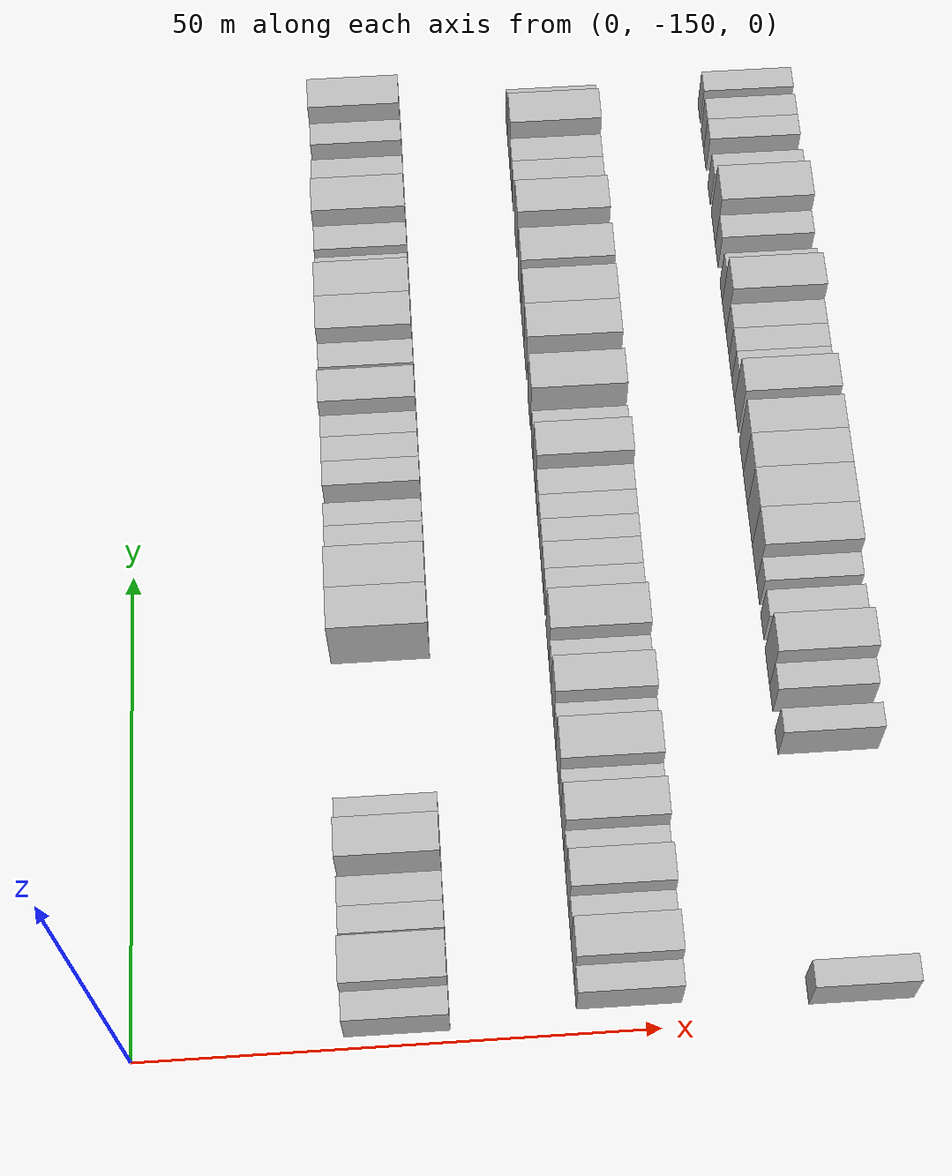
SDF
<sdf version="1.6">
 <world name="default">
  <model name="building_22">
   <static>1</static>
   <pose>25.0000 -147.4935 0 0.000000 0.000000 0.000000</pose>
   <link name="link">
    <pose>0 0 3.00 0 0 0</pose>
    <collision name="collision"><geometry><box><size>10.0000 2.7465 6.0000</size></box></geometry></collision>
    <visual name="visual">
     <cast_shadows>0</cast_shadows>
     <geometry><box><size>10.0000 2.7465 6.0000</size></box></geometry>
     <material>
      <script>
       <uri>model://HANNAS_wall/materials/scripts</uri>
       <uri>model://HANNAS_wall/materials/textures</uri>
       <name>vrc/HANNAS_wall</name>
      </script>
     </material>
    </visual>
   </link>
  </model>
  <model name="building_23">
   <static>1</static>
   <pose>25.0000 -143.8835 0 0.000000 0.000000 0.000000</pose>
   <link name="link">
    <pose>0 0 4.50 0 0 0</pose>
    <collision name="collision"><geometry><box><size>10.0000 4.4735 9.0000</size></box></geometry></collision>
    <visual name="visual">
     <cast_shadows>0</cast_shadows>
     <geometry><box><size>10.0000 4.4735 9.0000</size></box></geometry>
     <material>
      <script>
       <uri>model://HANNAS_wall/materials/scripts</uri>
       <uri>model://HANNAS_wall/materials/textures</uri>
       <name>vrc/HANNAS_wall</name>
      </script>
     </material>
    </visual>
   </link>
  </model>
  <model name="building_24">
   <static>1</static>
   <pose>25.0000 -139.3091 0 0.000000 0.000000 0.000000</pose>
   <link name="link">
    <pose>0 0 3.00 0 0 0</pose>
    <collision name="collision"><geometry><box><size>10.0000 2.6754 6.0000</size></box></geometry></collision>
    <visual name="visual">
     <cast_shadows>0</cast_shadows>
     <geometry><box><size>10.0000 2.6754 6.0000</size></box></geometry>
     <material>
      <script>
       <uri>model://HANNAS_wall/materials/scripts</uri>
       <uri>model://HANNAS_wall/materials/textures</uri>
       <name>vrc/HANNAS_wall</name>
      </script>
     </material>
    </visual>
   </link>
  </model>
  <model name="building_25">
   <static>1</static>
   <pose>25.0000 -136.5263 0 0.000000 0.000000 0.000000</pose>
   <link name="link">
    <pose>0 0 3.00 0 0 0</pose>
    <collision name="collision"><geometry><box><size>10.0000 2.8900 6.0000</size></box></geometry></collision>
    <visual name="visual">
     <cast_shadows>0</cast_shadows>
     <geometry><box><size>10.0000 2.8900 6.0000</size></box></geometry>
     <material>
      <script>
       <uri>model://HANNAS_wall/materials/scripts</uri>
       <uri>model://HANNAS_wall/materials/textures</uri>
       <name>vrc/HANNAS_wall</name>
      </script>
     </material>
    </visual>
   </link>
  </model>
  <model name="building_26">
   <static>1</static>
   <pose>25.0000 -132.1540 0 0.000000 0.000000 0.000000</pose>
   <link name="link">
    <pose>0 0 4.50 0 0 0</pose>
    <collision name="collision"><geometry><box><size>10.0000 3.8547 9.0000</size></box></geometry></collision>
    <visual name="visual">
     <cast_shadows>0</cast_shadows>
     <geometry><box><size>10.0000 3.8547 9.0000</size></box></geometry>
     <material>
      <script>
       <uri>model://HANNAS_wall/materials/scripts</uri>
       <uri>model://HANNAS_wall/materials/textures</uri>
       <name>vrc/HANNAS_wall</name>
      </script>
     </material>
    </visual>
   </link>
  </model>
  <model name="building_27">
   <static>1</static>
   <pose>25.0000 -128.7550 0 0.000000 0.000000 0.000000</pose>
   <link name="link">
    <pose>0 0 3.00 0 0 0</pose>
    <collision name="collision"><geometry><box><size>10.0000 2.9433 6.0000</size></box></geometry></collision>
    <visual name="visual">
     <cast_shadows>0</cast_shadows>
     <geometry><box><size>10.0000 2.9433 6.0000</size></box></geometry>
     <material>
      <script>
       <uri>model://HANNAS_wall/materials/scripts</uri>
       <uri>model://HANNAS_wall/materials/textures</uri>
       <name>vrc/HANNAS_wall</name>
      </script>
     </material>
    </visual>
   </link>
  </model>
  <model name="building_28">
   <static>1</static>
   <pose>25.0000 -108.6183 0 0.000000 0.000000 0.000000</pose>
   <link name="link">
    <pose>0 0 4.50 0 0 0</pose>
    <collision name="collision"><geometry><box><size>10.0000 4.4434 9.0000</size></box></geometry></collision>
    <visual name="visual">
     <cast_shadows>0</cast_shadows>
     <geometry><box><size>10.0000 4.4434 9.0000</size></box></geometry>
     <material>
      <script>
       <uri>model://HANNAS_wall/materials/scripts</uri>
       <uri>model://HANNAS_wall/materials/textures</uri>
       <name>vrc/HANNAS_wall</name>
      </script>
     </material>
    </visual>
   </link>
  </model>
  <model name="building_29">
   <static>1</static>
   <pose>25.0000 -104.1713 0 0.000000 0.000000 0.000000</pose>
   <link name="link">
    <pose>0 0 4.50 0 0 0</pose>
    <collision name="collision"><geometry><box><size>10.0000 4.4506 9.0000</size></box></geometry></collision>
    <visual name="visual">
     <cast_shadows>0</cast_shadows>
     <geometry><box><size>10.0000 4.4506 9.0000</size></box></geometry>
     <material>
      <script>
       <uri>model://HANNAS_wall/materials/scripts</uri>
       <uri>model://HANNAS_wall/materials/textures</uri>
       <name>vrc/HANNAS_wall</name>
      </script>
     </material>
    </visual>
   </link>
  </model>
  <model name="building_30">
   <static>1</static>
   <pose>25.0000 -99.5733 0 0.000000 0.000000 0.000000</pose>
   <link name="link">
    <pose>0 0 3.00 0 0 0</pose>
    <collision name="collision"><geometry><box><size>10.0000 2.7454 6.0000</size></box></geometry></collision>
    <visual name="visual">
     <cast_shadows>0</cast_shadows>
     <geometry><box><size>10.0000 2.7454 6.0000</size></box></geometry>
     <material>
      <script>
       <uri>model://HANNAS_wall/materials/scripts</uri>
       <uri>model://HANNAS_wall/materials/textures</uri>
       <name>vrc/HANNAS_wall</name>
      </script>
     </material>
    </visual>
   </link>
  </model>
  <model name="building_31">
   <static>1</static>
   <pose>25.0000 -96.9051 0 0.000000 0.000000 0.000000</pose>
   <link name="link">
    <pose>0 0 3.00 0 0 0</pose>
    <collision name="collision"><geometry><box><size>10.0000 2.5909 6.0000</size></box></geometry></collision>
    <visual name="visual">
     <cast_shadows>0</cast_shadows>
     <geometry><box><size>10.0000 2.5909 6.0000</size></box></geometry>
     <material>
      <script>
       <uri>model://HANNAS_wall/materials/scripts</uri>
       <uri>model://HANNAS_wall/materials/textures</uri>
       <name>vrc/HANNAS_wall</name>
      </script>
     </material>
    </visual>
   </link>
  </model>
  <model name="building_32">
   <static>1</static>
   <pose>25.0000 -92.2121 0 0.000000 0.000000 0.000000</pose>
   <link name="link">
    <pose>0 0 3.00 0 0 0</pose>
    <collision name="collision"><geometry><box><size>10.0000 2.7951 6.0000</size></box></geometry></collision>
    <visual name="visual">
     <cast_shadows>0</cast_shadows>
     <geometry><box><size>10.0000 2.7951 6.0000</size></box></geometry>
     <material>
      <script>
       <uri>model://HANNAS_wall/materials/scripts</uri>
       <uri>model://HANNAS_wall/materials/textures</uri>
       <name>vrc/HANNAS_wall</name>
      </script>
     </material>
    </visual>
   </link>
  </model>
  <model name="building_33">
   <static>1</static>
   <pose>25.0000 -89.3908 0 0.000000 0.000000 0.000000</pose>
   <link name="link">
    <pose>0 0 3.00 0 0 0</pose>
    <collision name="collision"><geometry><box><size>10.0000 2.8476 6.0000</size></box></geometry></collision>
    <visual name="visual">
     <cast_shadows>0</cast_shadows>
     <geometry><box><size>10.0000 2.8476 6.0000</size></box></geometry>
     <material>
      <script>
       <uri>model://HANNAS_wall/materials/scripts</uri>
       <uri>model://HANNAS_wall/materials/textures</uri>
       <name>vrc/HANNAS_wall</name>
      </script>
     </material>
    </visual>
   </link>
  </model>
  <model name="building_34">
   <static>1</static>
   <pose>25.0000 -86.7148 0 0.000000 0.000000 0.000000</pose>
   <link name="link">
    <pose>0 0 3.00 0 0 0</pose>
    <collision name="collision"><geometry><box><size>10.0000 2.5044 6.0000</size></box></geometry></collision>
    <visual name="visual">
     <cast_shadows>0</cast_shadows>
     <geometry><box><size>10.0000 2.5044 6.0000</size></box></geometry>
     <material>
      <script>
       <uri>model://HANNAS_wall/materials/scripts</uri>
       <uri>model://HANNAS_wall/materials/textures</uri>
       <name>vrc/HANNAS_wall</name>
      </script>
     </material>
    </visual>
   </link>
  </model>
  <model name="building_35">
   <static>1</static>
   <pose>25.0000 -83.5880 0 0.000000 0.000000 0.000000</pose>
   <link name="link">
    <pose>0 0 4.50 0 0 0</pose>
    <collision name="collision"><geometry><box><size>10.0000 3.7492 9.0000</size></box></geometry></collision>
    <visual name="visual">
     <cast_shadows>0</cast_shadows>
     <geometry><box><size>10.0000 3.7492 9.0000</size></box></geometry>
     <material>
      <script>
       <uri>model://HANNAS_wall/materials/scripts</uri>
       <uri>model://HANNAS_wall/materials/textures</uri>
       <name>vrc/HANNAS_wall</name>
      </script>
     </material>
    </visual>
   </link>
  </model>
  <model name="building_36">
   <static>1</static>
   <pose>25.0000 -78.2521 0 0.000000 0.000000 0.000000</pose>
   <link name="link">
    <pose>0 0 3.00 0 0 0</pose>
    <collision name="collision"><geometry><box><size>10.0000 2.9226 6.0000</size></box></geometry></collision>
    <visual name="visual">
     <cast_shadows>0</cast_shadows>
     <geometry><box><size>10.0000 2.9226 6.0000</size></box></geometry>
     <material>
      <script>
       <uri>model://HANNAS_wall/materials/scripts</uri>
       <uri>model://HANNAS_wall/materials/textures</uri>
       <name>vrc/HANNAS_wall</name>
      </script>
     </material>
    </visual>
   </link>
  </model>
  <model name="building_37">
   <static>1</static>
   <pose>25.0000 -74.7760 0 0.000000 0.000000 0.000000</pose>
   <link name="link">
    <pose>0 0 4.50 0 0 0</pose>
    <collision name="collision"><geometry><box><size>10.0000 4.0296 9.0000</size></box></geometry></collision>
    <visual name="visual">
     <cast_shadows>0</cast_shadows>
     <geometry><box><size>10.0000 4.0296 9.0000</size></box></geometry>
     <material>
      <script>
       <uri>model://HANNAS_wall/materials/scripts</uri>
       <uri>model://HANNAS_wall/materials/textures</uri>
       <name>vrc/HANNAS_wall</name>
      </script>
     </material>
    </visual>
   </link>
  </model>
  <model name="building_38">
   <static>1</static>
   <pose>25.0000 -70.6818 0 0.000000 0.000000 0.000000</pose>
   <link name="link">
    <pose>0 0 4.50 0 0 0</pose>
    <collision name="collision"><geometry><box><size>10.0000 4.1587 9.0000</size></box></geometry></collision>
    <visual name="visual">
     <cast_shadows>0</cast_shadows>
     <geometry><box><size>10.0000 4.1587 9.0000</size></box></geometry>
     <material>
      <script>
       <uri>model://HANNAS_wall/materials/scripts</uri>
       <uri>model://HANNAS_wall/materials/textures</uri>
       <name>vrc/HANNAS_wall</name>
      </script>
     </material>
    </visual>
   </link>
  </model>
  <model name="building_39">
   <static>1</static>
   <pose>25.0000 -67.3608 0 0.000000 0.000000 0.000000</pose>
   <link name="link">
    <pose>0 0 3.00 0 0 0</pose>
    <collision name="collision"><geometry><box><size>10.0000 2.4834 6.0000</size></box></geometry></collision>
    <visual name="visual">
     <cast_shadows>0</cast_shadows>
     <geometry><box><size>10.0000 2.4834 6.0000</size></box></geometry>
     <material>
      <script>
       <uri>model://HANNAS_wall/materials/scripts</uri>
       <uri>model://HANNAS_wall/materials/textures</uri>
       <name>vrc/HANNAS_wall</name>
      </script>
     </material>
    </visual>
   </link>
  </model>
  <model name="building_40">
   <static>1</static>
   <pose>25.0000 -63.6210 0 0.000000 0.000000 0.000000</pose>
   <link name="link">
    <pose>0 0 3.00 0 0 0</pose>
    <collision name="collision"><geometry><box><size>10.0000 2.9961 6.0000</size></box></geometry></collision>
    <visual name="visual">
     <cast_shadows>0</cast_shadows>
     <geometry><box><size>10.0000 2.9961 6.0000</size></box></geometry>
     <material>
      <script>
       <uri>model://HANNAS_wall/materials/scripts</uri>
       <uri>model://HANNAS_wall/materials/textures</uri>
       <name>vrc/HANNAS_wall</name>
      </script>
     </material>
    </visual>
   </link>
  </model>
  <model name="building_41">
   <static>1</static>
   <pose>25.0000 -60.0378 0 0.000000 0.000000 0.000000</pose>
   <link name="link">
    <pose>0 0 4.50 0 0 0</pose>
    <collision name="collision"><geometry><box><size>10.0000 4.1705 9.0000</size></box></geometry></collision>
    <visual name="visual">
     <cast_shadows>0</cast_shadows>
     <geometry><box><size>10.0000 4.1705 9.0000</size></box></geometry>
     <material>
      <script>
       <uri>model://HANNAS_wall/materials/scripts</uri>
       <uri>model://HANNAS_wall/materials/textures</uri>
       <name>vrc/HANNAS_wall</name>
      </script>
     </material>
    </visual>
   </link>
  </model>
  <model name="building_42">
   <static>1</static>
   <pose>25.0000 -54.7068 0 0.000000 0.000000 0.000000</pose>
   <link name="link">
    <pose>0 0 3.00 0 0 0</pose>
    <collision name="collision"><geometry><box><size>10.0000 2.4916 6.0000</size></box></geometry></collision>
    <visual name="visual">
     <cast_shadows>0</cast_shadows>
     <geometry><box><size>10.0000 2.4916 6.0000</size></box></geometry>
     <material>
      <script>
       <uri>model://HANNAS_wall/materials/scripts</uri>
       <uri>model://HANNAS_wall/materials/textures</uri>
       <name>vrc/HANNAS_wall</name>
      </script>
     </material>
    </visual>
   </link>
  </model>
  <model name="building_43">
   <static>1</static>
   <pose>25.0000 -50.0507 0 0.000000 0.000000 0.000000</pose>
   <link name="link">
    <pose>0 0 3.00 0 0 0</pose>
    <collision name="collision"><geometry><box><size>10.0000 2.8205 6.0000</size></box></geometry></collision>
    <visual name="visual">
     <cast_shadows>0</cast_shadows>
     <geometry><box><size>10.0000 2.8205 6.0000</size></box></geometry>
     <material>
      <script>
       <uri>model://HANNAS_wall/materials/scripts</uri>
       <uri>model://HANNAS_wall/materials/textures</uri>
       <name>vrc/HANNAS_wall</name>
      </script>
     </material>
    </visual>
   </link>
  </model>
  <model name="building_44">
   <static>1</static>
   <pose>25.0000 -46.7469 0 0.000000 0.000000 0.000000</pose>
   <link name="link">
    <pose>0 0 4.50 0 0 0</pose>
    <collision name="collision"><geometry><box><size>10.0000 3.7871 9.0000</size></box></geometry></collision>
    <visual name="visual">
     <cast_shadows>0</cast_shadows>
     <geometry><box><size>10.0000 3.7871 9.0000</size></box></geometry>
     <material>
      <script>
       <uri>model://HANNAS_wall/materials/scripts</uri>
       <uri>model://HANNAS_wall/materials/textures</uri>
       <name>vrc/HANNAS_wall</name>
      </script>
     </material>
    </visual>
   </link>
  </model>
  <model name="building_149">
   <static>1</static>
   <pose>47.0000 -146.3420 0 0.000000 0.000000 0.000000</pose>
   <link name="link">
    <pose>0 0 3.00 0 0 0</pose>
    <collision name="collision"><geometry><box><size>10.0000 2.5752 6.0000</size></box></geometry></collision>
    <visual name="visual">
     <cast_shadows>0</cast_shadows>
     <geometry><box><size>10.0000 2.5752 6.0000</size></box></geometry>
     <material>
      <script>
       <uri>model://HANNAS_wall/materials/scripts</uri>
       <uri>model://HANNAS_wall/materials/textures</uri>
       <name>vrc/HANNAS_wall</name>
      </script>
     </material>
    </visual>
   </link>
  </model>
  <model name="building_150">
   <static>1</static>
   <pose>47.0000 -143.1336 0 0.000000 0.000000 0.000000</pose>
   <link name="link">
    <pose>0 0 4.50 0 0 0</pose>
    <collision name="collision"><geometry><box><size>10.0000 3.8415 9.0000</size></box></geometry></collision>
    <visual name="visual">
     <cast_shadows>0</cast_shadows>
     <geometry><box><size>10.0000 3.8415 9.0000</size></box></geometry>
     <material>
      <script>
       <uri>model://HANNAS_wall/materials/scripts</uri>
       <uri>model://HANNAS_wall/materials/textures</uri>
       <name>vrc/HANNAS_wall</name>
      </script>
     </material>
    </visual>
   </link>
  </model>
  <model name="building_151">
   <static>1</static>
   <pose>47.0000 -139.7941 0 0.000000 0.000000 0.000000</pose>
   <link name="link">
    <pose>0 0 3.00 0 0 0</pose>
    <collision name="collision"><geometry><box><size>10.0000 2.8375 6.0000</size></box></geometry></collision>
    <visual name="visual">
     <cast_shadows>0</cast_shadows>
     <geometry><box><size>10.0000 2.8375 6.0000</size></box></geometry>
     <material>
      <script>
       <uri>model://HANNAS_wall/materials/scripts</uri>
       <uri>model://HANNAS_wall/materials/textures</uri>
       <name>vrc/HANNAS_wall</name>
      </script>
     </material>
    </visual>
   </link>
  </model>
  <model name="building_152">
   <static>1</static>
   <pose>47.0000 -136.5319 0 0.000000 0.000000 0.000000</pose>
   <link name="link">
    <pose>0 0 4.50 0 0 0</pose>
    <collision name="collision"><geometry><box><size>10.0000 3.6868 9.0000</size></box></geometry></collision>
    <visual name="visual">
     <cast_shadows>0</cast_shadows>
     <geometry><box><size>10.0000 3.6868 9.0000</size></box></geometry>
     <material>
      <script>
       <uri>model://HANNAS_wall/materials/scripts</uri>
       <uri>model://HANNAS_wall/materials/textures</uri>
       <name>vrc/HANNAS_wall</name>
      </script>
     </material>
    </visual>
   </link>
  </model>
  <model name="building_153">
   <static>1</static>
   <pose>47.0000 -133.3145 0 0.000000 0.000000 0.000000</pose>
   <link name="link">
    <pose>0 0 3.00 0 0 0</pose>
    <collision name="collision"><geometry><box><size>10.0000 2.7479 6.0000</size></box></geometry></collision>
    <visual name="visual">
     <cast_shadows>0</cast_shadows>
     <geometry><box><size>10.0000 2.7479 6.0000</size></box></geometry>
     <material>
      <script>
       <uri>model://HANNAS_wall/materials/scripts</uri>
       <uri>model://HANNAS_wall/materials/textures</uri>
       <name>vrc/HANNAS_wall</name>
      </script>
     </material>
    </visual>
   </link>
  </model>
  <model name="building_154">
   <static>1</static>
   <pose>47.0000 -130.0484 0 0.000000 0.000000 0.000000</pose>
   <link name="link">
    <pose>0 0 4.50 0 0 0</pose>
    <collision name="collision"><geometry><box><size>10.0000 3.7845 9.0000</size></box></geometry></collision>
    <visual name="visual">
     <cast_shadows>0</cast_shadows>
     <geometry><box><size>10.0000 3.7845 9.0000</size></box></geometry>
     <material>
      <script>
       <uri>model://HANNAS_wall/materials/scripts</uri>
       <uri>model://HANNAS_wall/materials/textures</uri>
       <name>vrc/HANNAS_wall</name>
      </script>
     </material>
    </visual>
   </link>
  </model>
  <model name="building_155">
   <static>1</static>
   <pose>47.0000 -126.9506 0 0.000000 0.000000 0.000000</pose>
   <link name="link">
    <pose>0 0 3.00 0 0 0</pose>
    <collision name="collision"><geometry><box><size>10.0000 2.4111 6.0000</size></box></geometry></collision>
    <visual name="visual">
     <cast_shadows>0</cast_shadows>
     <geometry><box><size>10.0000 2.4111 6.0000</size></box></geometry>
     <material>
      <script>
       <uri>model://HANNAS_wall/materials/scripts</uri>
       <uri>model://HANNAS_wall/materials/textures</uri>
       <name>vrc/HANNAS_wall</name>
      </script>
     </material>
    </visual>
   </link>
  </model>
  <model name="building_156">
   <static>1</static>
   <pose>47.0000 -123.6045 0 0.000000 0.000000 0.000000</pose>
   <link name="link">
    <pose>0 0 4.50 0 0 0</pose>
    <collision name="collision"><geometry><box><size>10.0000 4.2811 9.0000</size></box></geometry></collision>
    <visual name="visual">
     <cast_shadows>0</cast_shadows>
     <geometry><box><size>10.0000 4.2811 9.0000</size></box></geometry>
     <material>
      <script>
       <uri>model://HANNAS_wall/materials/scripts</uri>
       <uri>model://HANNAS_wall/materials/textures</uri>
       <name>vrc/HANNAS_wall</name>
      </script>
     </material>
    </visual>
   </link>
  </model>
  <model name="building_157">
   <static>1</static>
   <pose>47.0000 -120.1781 0 0.000000 0.000000 0.000000</pose>
   <link name="link">
    <pose>0 0 3.00 0 0 0</pose>
    <collision name="collision"><geometry><box><size>10.0000 2.5718 6.0000</size></box></geometry></collision>
    <visual name="visual">
     <cast_shadows>0</cast_shadows>
     <geometry><box><size>10.0000 2.5718 6.0000</size></box></geometry>
     <material>
      <script>
       <uri>model://HANNAS_wall/materials/scripts</uri>
       <uri>model://HANNAS_wall/materials/textures</uri>
       <name>vrc/HANNAS_wall</name>
      </script>
     </material>
    </visual>
   </link>
  </model>
  <model name="building_158">
   <static>1</static>
   <pose>47.0000 -116.9999 0 0.000000 0.000000 0.000000</pose>
   <link name="link">
    <pose>0 0 4.50 0 0 0</pose>
    <collision name="collision"><geometry><box><size>10.0000 3.7845 9.0000</size></box></geometry></collision>
    <visual name="visual">
     <cast_shadows>0</cast_shadows>
     <geometry><box><size>10.0000 3.7845 9.0000</size></box></geometry>
     <material>
      <script>
       <uri>model://HANNAS_wall/materials/scripts</uri>
       <uri>model://HANNAS_wall/materials/textures</uri>
       <name>vrc/HANNAS_wall</name>
      </script>
     </material>
    </visual>
   </link>
  </model>
  <model name="building_159">
   <static>1</static>
   <pose>47.0000 -113.6696 0 0.000000 0.000000 0.000000</pose>
   <link name="link">
    <pose>0 0 3.00 0 0 0</pose>
    <collision name="collision"><geometry><box><size>10.0000 2.8761 6.0000</size></box></geometry></collision>
    <visual name="visual">
     <cast_shadows>0</cast_shadows>
     <geometry><box><size>10.0000 2.8761 6.0000</size></box></geometry>
     <material>
      <script>
       <uri>model://HANNAS_wall/materials/scripts</uri>
       <uri>model://HANNAS_wall/materials/textures</uri>
       <name>vrc/HANNAS_wall</name>
      </script>
     </material>
    </visual>
   </link>
  </model>
  <model name="building_160">
   <static>1</static>
   <pose>47.0000 -110.0635 0 0.000000 0.000000 0.000000</pose>
   <link name="link">
    <pose>0 0 4.50 0 0 0</pose>
    <collision name="collision"><geometry><box><size>10.0000 4.3361 9.0000</size></box></geometry></collision>
    <visual name="visual">
     <cast_shadows>0</cast_shadows>
     <geometry><box><size>10.0000 4.3361 9.0000</size></box></geometry>
     <material>
      <script>
       <uri>model://HANNAS_wall/materials/scripts</uri>
       <uri>model://HANNAS_wall/materials/textures</uri>
       <name>vrc/HANNAS_wall</name>
      </script>
     </material>
    </visual>
   </link>
  </model>
  <model name="building_161">
   <static>1</static>
   <pose>47.0000 -105.6255 0 0.000000 0.000000 0.000000</pose>
   <link name="link">
    <pose>0 0 3.00 0 0 0</pose>
    <collision name="collision"><geometry><box><size>10.0000 2.5400 6.0000</size></box></geometry></collision>
    <visual name="visual">
     <cast_shadows>0</cast_shadows>
     <geometry><box><size>10.0000 2.5400 6.0000</size></box></geometry>
     <material>
      <script>
       <uri>model://HANNAS_wall/materials/scripts</uri>
       <uri>model://HANNAS_wall/materials/textures</uri>
       <name>vrc/HANNAS_wall</name>
      </script>
     </material>
    </visual>
   </link>
  </model>
  <model name="building_162">
   <static>1</static>
   <pose>47.0000 -102.8700 0 0.000000 0.000000 0.000000</pose>
   <link name="link">
    <pose>0 0 3.00 0 0 0</pose>
    <collision name="collision"><geometry><box><size>10.0000 2.9710 6.0000</size></box></geometry></collision>
    <visual name="visual">
     <cast_shadows>0</cast_shadows>
     <geometry><box><size>10.0000 2.9710 6.0000</size></box></geometry>
     <material>
      <script>
       <uri>model://HANNAS_wall/materials/scripts</uri>
       <uri>model://HANNAS_wall/materials/textures</uri>
       <name>vrc/HANNAS_wall</name>
      </script>
     </material>
    </visual>
   </link>
  </model>
  <model name="building_163">
   <static>1</static>
   <pose>47.0000 -100.0938 0 0.000000 0.000000 0.000000</pose>
   <link name="link">
    <pose>0 0 3.00 0 0 0</pose>
    <collision name="collision"><geometry><box><size>10.0000 2.5813 6.0000</size></box></geometry></collision>
    <visual name="visual">
     <cast_shadows>0</cast_shadows>
     <geometry><box><size>10.0000 2.5813 6.0000</size></box></geometry>
     <material>
      <script>
       <uri>model://HANNAS_wall/materials/scripts</uri>
       <uri>model://HANNAS_wall/materials/textures</uri>
       <name>vrc/HANNAS_wall</name>
      </script>
     </material>
    </visual>
   </link>
  </model>
  <model name="building_164">
   <static>1</static>
   <pose>47.0000 -97.4180 0 0.000000 0.000000 0.000000</pose>
   <link name="link">
    <pose>0 0 3.00 0 0 0</pose>
    <collision name="collision"><geometry><box><size>10.0000 2.7703 6.0000</size></box></geometry></collision>
    <visual name="visual">
     <cast_shadows>0</cast_shadows>
     <geometry><box><size>10.0000 2.7703 6.0000</size></box></geometry>
     <material>
      <script>
       <uri>model://HANNAS_wall/materials/scripts</uri>
       <uri>model://HANNAS_wall/materials/textures</uri>
       <name>vrc/HANNAS_wall</name>
      </script>
     </material>
    </visual>
   </link>
  </model>
  <model name="building_165">
   <static>1</static>
   <pose>47.0000 -94.5727 0 0.000000 0.000000 0.000000</pose>
   <link name="link">
    <pose>0 0 3.00 0 0 0</pose>
    <collision name="collision"><geometry><box><size>10.0000 2.9203 6.0000</size></box></geometry></collision>
    <visual name="visual">
     <cast_shadows>0</cast_shadows>
     <geometry><box><size>10.0000 2.9203 6.0000</size></box></geometry>
     <material>
      <script>
       <uri>model://HANNAS_wall/materials/scripts</uri>
       <uri>model://HANNAS_wall/materials/textures</uri>
       <name>vrc/HANNAS_wall</name>
      </script>
     </material>
    </visual>
   </link>
  </model>
  <model name="building_166">
   <static>1</static>
   <pose>47.0000 -91.1858 0 0.000000 0.000000 0.000000</pose>
   <link name="link">
    <pose>0 0 4.50 0 0 0</pose>
    <collision name="collision"><geometry><box><size>10.0000 3.8535 9.0000</size></box></geometry></collision>
    <visual name="visual">
     <cast_shadows>0</cast_shadows>
     <geometry><box><size>10.0000 3.8535 9.0000</size></box></geometry>
     <material>
      <script>
       <uri>model://HANNAS_wall/materials/scripts</uri>
       <uri>model://HANNAS_wall/materials/textures</uri>
       <name>vrc/HANNAS_wall</name>
      </script>
     </material>
    </visual>
   </link>
  </model>
  <model name="building_167">
   <static>1</static>
   <pose>47.0000 -87.7710 0 0.000000 0.000000 0.000000</pose>
   <link name="link">
    <pose>0 0 3.00 0 0 0</pose>
    <collision name="collision"><geometry><box><size>10.0000 2.9760 6.0000</size></box></geometry></collision>
    <visual name="visual">
     <cast_shadows>0</cast_shadows>
     <geometry><box><size>10.0000 2.9760 6.0000</size></box></geometry>
     <material>
      <script>
       <uri>model://HANNAS_wall/materials/scripts</uri>
       <uri>model://HANNAS_wall/materials/textures</uri>
       <name>vrc/HANNAS_wall</name>
      </script>
     </material>
    </visual>
   </link>
  </model>
  <model name="building_168">
   <static>1</static>
   <pose>47.0000 -83.2324 0 0.000000 0.000000 0.000000</pose>
   <link name="link">
    <pose>0 0 4.50 0 0 0</pose>
    <collision name="collision"><geometry><box><size>10.0000 4.1013 9.0000</size></box></geometry></collision>
    <visual name="visual">
     <cast_shadows>0</cast_shadows>
     <geometry><box><size>10.0000 4.1013 9.0000</size></box></geometry>
     <material>
      <script>
       <uri>model://HANNAS_wall/materials/scripts</uri>
       <uri>model://HANNAS_wall/materials/textures</uri>
       <name>vrc/HANNAS_wall</name>
      </script>
     </material>
    </visual>
   </link>
  </model>
  <model name="building_169">
   <static>1</static>
   <pose>47.0000 -77.1241 0 0.000000 0.000000 0.000000</pose>
   <link name="link">
    <pose>0 0 4.50 0 0 0</pose>
    <collision name="collision"><geometry><box><size>10.0000 4.1151 9.0000</size></box></geometry></collision>
    <visual name="visual">
     <cast_shadows>0</cast_shadows>
     <geometry><box><size>10.0000 4.1151 9.0000</size></box></geometry>
     <material>
      <script>
       <uri>model://HANNAS_wall/materials/scripts</uri>
       <uri>model://HANNAS_wall/materials/textures</uri>
       <name>vrc/HANNAS_wall</name>
      </script>
     </material>
    </visual>
   </link>
  </model>
  <model name="building_170">
   <static>1</static>
   <pose>47.0000 -72.9277 0 0.000000 0.000000 0.000000</pose>
   <link name="link">
    <pose>0 0 4.50 0 0 0</pose>
    <collision name="collision"><geometry><box><size>10.0000 4.2779 9.0000</size></box></geometry></collision>
    <visual name="visual">
     <cast_shadows>0</cast_shadows>
     <geometry><box><size>10.0000 4.2779 9.0000</size></box></geometry>
     <material>
      <script>
       <uri>model://HANNAS_wall/materials/scripts</uri>
       <uri>model://HANNAS_wall/materials/textures</uri>
       <name>vrc/HANNAS_wall</name>
      </script>
     </material>
    </visual>
   </link>
  </model>
  <model name="building_171">
   <static>1</static>
   <pose>47.0000 -67.7334 0 0.000000 0.000000 0.000000</pose>
   <link name="link">
    <pose>0 0 4.50 0 0 0</pose>
    <collision name="collision"><geometry><box><size>10.0000 4.1106 9.0000</size></box></geometry></collision>
    <visual name="visual">
     <cast_shadows>0</cast_shadows>
     <geometry><box><size>10.0000 4.1106 9.0000</size></box></geometry>
     <material>
      <script>
       <uri>model://HANNAS_wall/materials/scripts</uri>
       <uri>model://HANNAS_wall/materials/textures</uri>
       <name>vrc/HANNAS_wall</name>
      </script>
     </material>
    </visual>
   </link>
  </model>
  <model name="building_172">
   <static>1</static>
   <pose>47.0000 -61.6347 0 0.000000 0.000000 0.000000</pose>
   <link name="link">
    <pose>0 0 4.50 0 0 0</pose>
    <collision name="collision"><geometry><box><size>10.0000 4.0869 9.0000</size></box></geometry></collision>
    <visual name="visual">
     <cast_shadows>0</cast_shadows>
     <geometry><box><size>10.0000 4.0869 9.0000</size></box></geometry>
     <material>
      <script>
       <uri>model://HANNAS_wall/materials/scripts</uri>
       <uri>model://HANNAS_wall/materials/textures</uri>
       <name>vrc/HANNAS_wall</name>
      </script>
     </material>
    </visual>
   </link>
  </model>
  <model name="building_173">
   <static>1</static>
   <pose>47.0000 -56.3010 0 0.000000 0.000000 0.000000</pose>
   <link name="link">
    <pose>0 0 3.00 0 0 0</pose>
    <collision name="collision"><geometry><box><size>10.0000 2.5804 6.0000</size></box></geometry></collision>
    <visual name="visual">
     <cast_shadows>0</cast_shadows>
     <geometry><box><size>10.0000 2.5804 6.0000</size></box></geometry>
     <material>
      <script>
       <uri>model://HANNAS_wall/materials/scripts</uri>
       <uri>model://HANNAS_wall/materials/textures</uri>
       <name>vrc/HANNAS_wall</name>
      </script>
     </material>
    </visual>
   </link>
  </model>
  <model name="building_174">
   <static>1</static>
   <pose>47.0000 -53.5266 0 0.000000 0.000000 0.000000</pose>
   <link name="link">
    <pose>0 0 3.00 0 0 0</pose>
    <collision name="collision"><geometry><box><size>10.0000 2.9685 6.0000</size></box></geometry></collision>
    <visual name="visual">
     <cast_shadows>0</cast_shadows>
     <geometry><box><size>10.0000 2.9685 6.0000</size></box></geometry>
     <material>
      <script>
       <uri>model://HANNAS_wall/materials/scripts</uri>
       <uri>model://HANNAS_wall/materials/textures</uri>
       <name>vrc/HANNAS_wall</name>
      </script>
     </material>
    </visual>
   </link>
  </model>
  <model name="building_175">
   <static>1</static>
   <pose>47.0000 -50.0805 0 0.000000 0.000000 0.000000</pose>
   <link name="link">
    <pose>0 0 4.50 0 0 0</pose>
    <collision name="collision"><geometry><box><size>10.0000 3.9237 9.0000</size></box></geometry></collision>
    <visual name="visual">
     <cast_shadows>0</cast_shadows>
     <geometry><box><size>10.0000 3.9237 9.0000</size></box></geometry>
     <material>
      <script>
       <uri>model://HANNAS_wall/materials/scripts</uri>
       <uri>model://HANNAS_wall/materials/textures</uri>
       <name>vrc/HANNAS_wall</name>
      </script>
     </material>
    </visual>
   </link>
  </model>
  <model name="building_176">
   <static>1</static>
   <pose>47.0000 -46.7707 0 0.000000 0.000000 0.000000</pose>
   <link name="link">
    <pose>0 0 3.00 0 0 0</pose>
    <collision name="collision"><geometry><box><size>10.0000 2.6958 6.0000</size></box></geometry></collision>
    <visual name="visual">
     <cast_shadows>0</cast_shadows>
     <geometry><box><size>10.0000 2.6958 6.0000</size></box></geometry>
     <material>
      <script>
       <uri>model://HANNAS_wall/materials/scripts</uri>
       <uri>model://HANNAS_wall/materials/textures</uri>
       <name>vrc/HANNAS_wall</name>
      </script>
     </material>
    </visual>
   </link>
  </model>
  <model name="building_274">
   <static>1</static>
   <pose>69.0000 -147.2666 0 0.000000 0.000000 0.000000</pose>
   <link name="link">
    <pose>0 0 3.00 0 0 0</pose>
    <collision name="collision"><geometry><box><size>10.0000 2.6151 6.0000</size></box></geometry></collision>
    <visual name="visual">
     <cast_shadows>0</cast_shadows>
     <geometry><box><size>10.0000 2.6151 6.0000</size></box></geometry>
     <material>
      <script>
       <uri>model://HANNAS_wall/materials/scripts</uri>
       <uri>model://HANNAS_wall/materials/textures</uri>
       <name>vrc/HANNAS_wall</name>
      </script>
     </material>
    </visual>
   </link>
  </model>
  <model name="building_275">
   <static>1</static>
   <pose>69.0000 -122.1341 0 0.000000 0.000000 0.000000</pose>
   <link name="link">
    <pose>0 0 3.00 0 0 0</pose>
    <collision name="collision"><geometry><box><size>10.0000 2.5499 6.0000</size></box></geometry></collision>
    <visual name="visual">
     <cast_shadows>0</cast_shadows>
     <geometry><box><size>10.0000 2.5499 6.0000</size></box></geometry>
     <material>
      <script>
       <uri>model://HANNAS_wall/materials/scripts</uri>
       <uri>model://HANNAS_wall/materials/textures</uri>
       <name>vrc/HANNAS_wall</name>
      </script>
     </material>
    </visual>
   </link>
  </model>
  <model name="building_276">
   <static>1</static>
   <pose>69.0000 -117.4764 0 0.000000 0.000000 0.000000</pose>
   <link name="link">
    <pose>0 0 3.00 0 0 0</pose>
    <collision name="collision"><geometry><box><size>10.0000 2.7655 6.0000</size></box></geometry></collision>
    <visual name="visual">
     <cast_shadows>0</cast_shadows>
     <geometry><box><size>10.0000 2.7655 6.0000</size></box></geometry>
     <material>
      <script>
       <uri>model://HANNAS_wall/materials/scripts</uri>
       <uri>model://HANNAS_wall/materials/textures</uri>
       <name>vrc/HANNAS_wall</name>
      </script>
     </material>
    </visual>
   </link>
  </model>
  <model name="building_277">
   <static>1</static>
   <pose>69.0000 -114.0559 0 0.000000 0.000000 0.000000</pose>
   <link name="link">
    <pose>0 0 4.50 0 0 0</pose>
    <collision name="collision"><geometry><box><size>10.0000 4.0755 9.0000</size></box></geometry></collision>
    <visual name="visual">
     <cast_shadows>0</cast_shadows>
     <geometry><box><size>10.0000 4.0755 9.0000</size></box></geometry>
     <material>
      <script>
       <uri>model://HANNAS_wall/materials/scripts</uri>
       <uri>model://HANNAS_wall/materials/textures</uri>
       <name>vrc/HANNAS_wall</name>
      </script>
     </material>
    </visual>
   </link>
  </model>
  <model name="building_278">
   <static>1</static>
   <pose>69.0000 -109.5790 0 0.000000 0.000000 0.000000</pose>
   <link name="link">
    <pose>0 0 3.00 0 0 0</pose>
    <collision name="collision"><geometry><box><size>10.0000 2.8783 6.0000</size></box></geometry></collision>
    <visual name="visual">
     <cast_shadows>0</cast_shadows>
     <geometry><box><size>10.0000 2.8783 6.0000</size></box></geometry>
     <material>
      <script>
       <uri>model://HANNAS_wall/materials/scripts</uri>
       <uri>model://HANNAS_wall/materials/textures</uri>
       <name>vrc/HANNAS_wall</name>
      </script>
     </material>
    </visual>
   </link>
  </model>
  <model name="building_279">
   <static>1</static>
   <pose>69.0000 -105.8483 0 0.000000 0.000000 0.000000</pose>
   <link name="link">
    <pose>0 0 3.00 0 0 0</pose>
    <collision name="collision"><geometry><box><size>10.0000 2.5833 6.0000</size></box></geometry></collision>
    <visual name="visual">
     <cast_shadows>0</cast_shadows>
     <geometry><box><size>10.0000 2.5833 6.0000</size></box></geometry>
     <material>
      <script>
       <uri>model://HANNAS_wall/materials/scripts</uri>
       <uri>model://HANNAS_wall/materials/textures</uri>
       <name>vrc/HANNAS_wall</name>
      </script>
     </material>
    </visual>
   </link>
  </model>
  <model name="building_280">
   <static>1</static>
   <pose>69.0000 -102.4500 0 0.000000 0.000000 0.000000</pose>
   <link name="link">
    <pose>0 0 4.50 0 0 0</pose>
    <collision name="collision"><geometry><box><size>10.0000 4.2131 9.0000</size></box></geometry></collision>
    <visual name="visual">
     <cast_shadows>0</cast_shadows>
     <geometry><box><size>10.0000 4.2131 9.0000</size></box></geometry>
     <material>
      <script>
       <uri>model://HANNAS_wall/materials/scripts</uri>
       <uri>model://HANNAS_wall/materials/textures</uri>
       <name>vrc/HANNAS_wall</name>
      </script>
     </material>
    </visual>
   </link>
  </model>
  <model name="building_281">
   <static>1</static>
   <pose>69.0000 -98.0984 0 0.000000 0.000000 0.000000</pose>
   <link name="link">
    <pose>0 0 4.50 0 0 0</pose>
    <collision name="collision"><geometry><box><size>10.0000 4.4900 9.0000</size></box></geometry></collision>
    <visual name="visual">
     <cast_shadows>0</cast_shadows>
     <geometry><box><size>10.0000 4.4900 9.0000</size></box></geometry>
     <material>
      <script>
       <uri>model://HANNAS_wall/materials/scripts</uri>
       <uri>model://HANNAS_wall/materials/textures</uri>
       <name>vrc/HANNAS_wall</name>
      </script>
     </material>
    </visual>
   </link>
  </model>
  <model name="building_282">
   <static>1</static>
   <pose>69.0000 -93.8795 0 0.000000 0.000000 0.000000</pose>
   <link name="link">
    <pose>0 0 4.50 0 0 0</pose>
    <collision name="collision"><geometry><box><size>10.0000 3.9478 9.0000</size></box></geometry></collision>
    <visual name="visual">
     <cast_shadows>0</cast_shadows>
     <geometry><box><size>10.0000 3.9478 9.0000</size></box></geometry>
     <material>
      <script>
       <uri>model://HANNAS_wall/materials/scripts</uri>
       <uri>model://HANNAS_wall/materials/textures</uri>
       <name>vrc/HANNAS_wall</name>
      </script>
     </material>
    </visual>
   </link>
  </model>
  <model name="building_283">
   <static>1</static>
   <pose>69.0000 -89.9774 0 0.000000 0.000000 0.000000</pose>
   <link name="link">
    <pose>0 0 4.50 0 0 0</pose>
    <collision name="collision"><geometry><box><size>10.0000 3.8563 9.0000</size></box></geometry></collision>
    <visual name="visual">
     <cast_shadows>0</cast_shadows>
     <geometry><box><size>10.0000 3.8563 9.0000</size></box></geometry>
     <material>
      <script>
       <uri>model://HANNAS_wall/materials/scripts</uri>
       <uri>model://HANNAS_wall/materials/textures</uri>
       <name>vrc/HANNAS_wall</name>
      </script>
     </material>
    </visual>
   </link>
  </model>
  <model name="building_284">
   <static>1</static>
   <pose>69.0000 -85.1098 0 0.000000 0.000000 0.000000</pose>
   <link name="link">
    <pose>0 0 4.50 0 0 0</pose>
    <collision name="collision"><geometry><box><size>10.0000 3.8789 9.0000</size></box></geometry></collision>
    <visual name="visual">
     <cast_shadows>0</cast_shadows>
     <geometry><box><size>10.0000 3.8789 9.0000</size></box></geometry>
     <material>
      <script>
       <uri>model://HANNAS_wall/materials/scripts</uri>
       <uri>model://HANNAS_wall/materials/textures</uri>
       <name>vrc/HANNAS_wall</name>
      </script>
     </material>
    </visual>
   </link>
  </model>
  <model name="building_285">
   <static>1</static>
   <pose>69.0000 -81.8639 0 0.000000 0.000000 0.000000</pose>
   <link name="link">
    <pose>0 0 3.00 0 0 0</pose>
    <collision name="collision"><geometry><box><size>10.0000 2.6129 6.0000</size></box></geometry></collision>
    <visual name="visual">
     <cast_shadows>0</cast_shadows>
     <geometry><box><size>10.0000 2.6129 6.0000</size></box></geometry>
     <material>
      <script>
       <uri>model://HANNAS_wall/materials/scripts</uri>
       <uri>model://HANNAS_wall/materials/textures</uri>
       <name>vrc/HANNAS_wall</name>
      </script>
     </material>
    </visual>
   </link>
  </model>
  <model name="building_286">
   <static>1</static>
   <pose>69.0000 -79.1446 0 0.000000 0.000000 0.000000</pose>
   <link name="link">
    <pose>0 0 3.00 0 0 0</pose>
    <collision name="collision"><geometry><box><size>10.0000 2.8257 6.0000</size></box></geometry></collision>
    <visual name="visual">
     <cast_shadows>0</cast_shadows>
     <geometry><box><size>10.0000 2.8257 6.0000</size></box></geometry>
     <material>
      <script>
       <uri>model://HANNAS_wall/materials/scripts</uri>
       <uri>model://HANNAS_wall/materials/textures</uri>
       <name>vrc/HANNAS_wall</name>
      </script>
     </material>
    </visual>
   </link>
  </model>
  <model name="building_287">
   <static>1</static>
   <pose>69.0000 -76.2451 0 0.000000 0.000000 0.000000</pose>
   <link name="link">
    <pose>0 0 3.00 0 0 0</pose>
    <collision name="collision"><geometry><box><size>10.0000 2.9732 6.0000</size></box></geometry></collision>
    <visual name="visual">
     <cast_shadows>0</cast_shadows>
     <geometry><box><size>10.0000 2.9732 6.0000</size></box></geometry>
     <material>
      <script>
       <uri>model://HANNAS_wall/materials/scripts</uri>
       <uri>model://HANNAS_wall/materials/textures</uri>
       <name>vrc/HANNAS_wall</name>
      </script>
     </material>
    </visual>
   </link>
  </model>
  <model name="building_288">
   <static>1</static>
   <pose>69.0000 -72.7987 0 0.000000 0.000000 0.000000</pose>
   <link name="link">
    <pose>0 0 4.50 0 0 0</pose>
    <collision name="collision"><geometry><box><size>10.0000 3.9196 9.0000</size></box></geometry></collision>
    <visual name="visual">
     <cast_shadows>0</cast_shadows>
     <geometry><box><size>10.0000 3.9196 9.0000</size></box></geometry>
     <material>
      <script>
       <uri>model://HANNAS_wall/materials/scripts</uri>
       <uri>model://HANNAS_wall/materials/textures</uri>
       <name>vrc/HANNAS_wall</name>
      </script>
     </material>
    </visual>
   </link>
  </model>
  <model name="building_289">
   <static>1</static>
   <pose>69.0000 -69.6159 0 0.000000 0.000000 0.000000</pose>
   <link name="link">
    <pose>0 0 3.00 0 0 0</pose>
    <collision name="collision"><geometry><box><size>10.0000 2.4461 6.0000</size></box></geometry></collision>
    <visual name="visual">
     <cast_shadows>0</cast_shadows>
     <geometry><box><size>10.0000 2.4461 6.0000</size></box></geometry>
     <material>
      <script>
       <uri>model://HANNAS_wall/materials/scripts</uri>
       <uri>model://HANNAS_wall/materials/textures</uri>
       <name>vrc/HANNAS_wall</name>
      </script>
     </material>
    </visual>
   </link>
  </model>
  <model name="building_290">
   <static>1</static>
   <pose>69.0000 -64.9581 0 0.000000 0.000000 0.000000</pose>
   <link name="link">
    <pose>0 0 3.00 0 0 0</pose>
    <collision name="collision"><geometry><box><size>10.0000 2.8693 6.0000</size></box></geometry></collision>
    <visual name="visual">
     <cast_shadows>0</cast_shadows>
     <geometry><box><size>10.0000 2.8693 6.0000</size></box></geometry>
     <material>
      <script>
       <uri>model://HANNAS_wall/materials/scripts</uri>
       <uri>model://HANNAS_wall/materials/textures</uri>
       <name>vrc/HANNAS_wall</name>
      </script>
     </material>
    </visual>
   </link>
  </model>
  <model name="building_291">
   <static>1</static>
   <pose>69.0000 -61.3295 0 0.000000 0.000000 0.000000</pose>
   <link name="link">
    <pose>0 0 4.50 0 0 0</pose>
    <collision name="collision"><geometry><box><size>10.0000 4.3880 9.0000</size></box></geometry></collision>
    <visual name="visual">
     <cast_shadows>0</cast_shadows>
     <geometry><box><size>10.0000 4.3880 9.0000</size></box></geometry>
     <material>
      <script>
       <uri>model://HANNAS_wall/materials/scripts</uri>
       <uri>model://HANNAS_wall/materials/textures</uri>
       <name>vrc/HANNAS_wall</name>
      </script>
     </material>
    </visual>
   </link>
  </model>
  <model name="building_292">
   <static>1</static>
   <pose>69.0000 -56.8265 0 0.000000 0.000000 0.000000</pose>
   <link name="link">
    <pose>0 0 3.00 0 0 0</pose>
    <collision name="collision"><geometry><box><size>10.0000 2.6179 6.0000</size></box></geometry></collision>
    <visual name="visual">
     <cast_shadows>0</cast_shadows>
     <geometry><box><size>10.0000 2.6179 6.0000</size></box></geometry>
     <material>
      <script>
       <uri>model://HANNAS_wall/materials/scripts</uri>
       <uri>model://HANNAS_wall/materials/textures</uri>
       <name>vrc/HANNAS_wall</name>
      </script>
     </material>
    </visual>
   </link>
  </model>
  <model name="building_293">
   <static>1</static>
   <pose>69.0000 -52.1811 0 0.000000 0.000000 0.000000</pose>
   <link name="link">
    <pose>0 0 3.00 0 0 0</pose>
    <collision name="collision"><geometry><box><size>10.0000 2.6728 6.0000</size></box></geometry></collision>
    <visual name="visual">
     <cast_shadows>0</cast_shadows>
     <geometry><box><size>10.0000 2.6728 6.0000</size></box></geometry>
     <material>
      <script>
       <uri>model://HANNAS_wall/materials/scripts</uri>
       <uri>model://HANNAS_wall/materials/textures</uri>
       <name>vrc/HANNAS_wall</name>
      </script>
     </material>
    </visual>
   </link>
  </model>
  <model name="building_294">
   <static>1</static>
   <pose>69.0000 -49.4393 0 0.000000 0.000000 0.000000</pose>
   <link name="link">
    <pose>0 0 3.00 0 0 0</pose>
    <collision name="collision"><geometry><box><size>10.0000 2.8108 6.0000</size></box></geometry></collision>
    <visual name="visual">
     <cast_shadows>0</cast_shadows>
     <geometry><box><size>10.0000 2.8108 6.0000</size></box></geometry>
     <material>
      <script>
       <uri>model://HANNAS_wall/materials/scripts</uri>
       <uri>model://HANNAS_wall/materials/textures</uri>
       <name>vrc/HANNAS_wall</name>
      </script>
     </material>
    </visual>
   </link>
  </model>
  <model name="building_295">
   <static>1</static>
   <pose>69.0000 -45.7209 0 0.000000 0.000000 0.000000</pose>
   <link name="link">
    <pose>0 0 3.00 0 0 0</pose>
    <collision name="collision"><geometry><box><size>10.0000 2.6260 6.0000</size></box></geometry></collision>
    <visual name="visual">
     <cast_shadows>0</cast_shadows>
     <geometry><box><size>10.0000 2.6260 6.0000</size></box></geometry>
     <material>
      <script>
       <uri>model://HANNAS_wall/materials/scripts</uri>
       <uri>model://HANNAS_wall/materials/textures</uri>
       <name>vrc/HANNAS_wall</name>
      </script>
     </material>
    </visual>
   </link>
  </model>
 </world>
</sdf>
